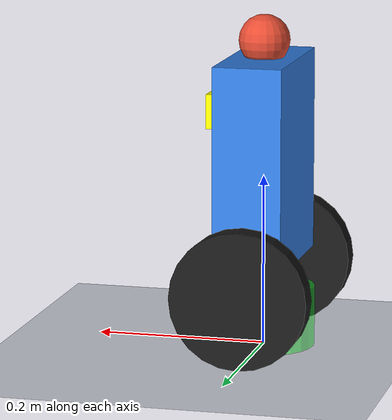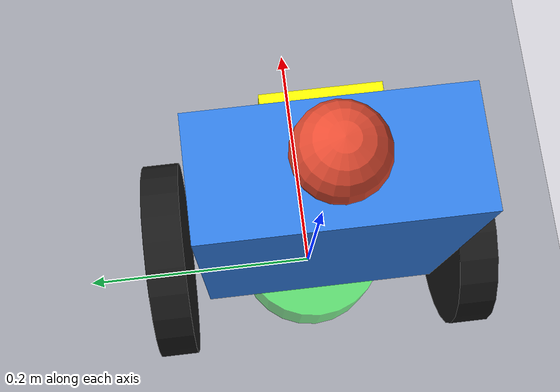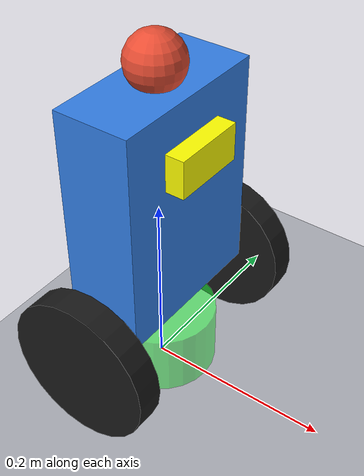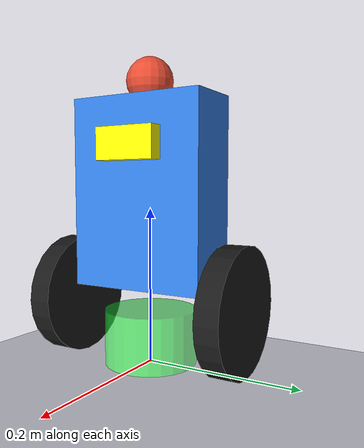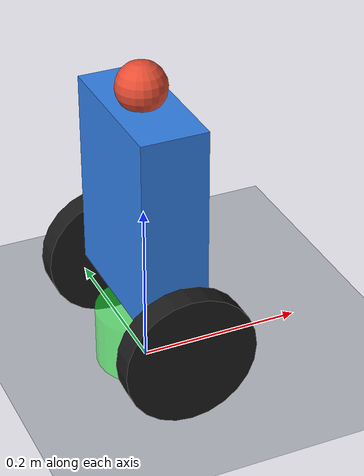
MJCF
<mujoco model="balance_bot">
  <option timestep="0.002" integrator="implicitfast"/>
  <visual><global offwidth="640" offheight="480"/></visual>
  <asset>
    <texture name="grid" type="2d" builtin="checker" rgb1=".25 .3 .35" rgb2=".18 .22 .27"
             width="300" height="300"/>
    <material name="grid" texture="grid" texrepeat="12 12" reflectance="0.1"/>
  </asset>
  <worldbody>
    <light pos="0 0 3" dir="0 0 -1"/>
    <geom name="floor" type="plane" size="5 5 0.1" material="grid"
          friction="1 0.005 0.0001"/>
    <site name="target" pos="0 0 0.01" size="0.06 0.06 0.004" type="cylinder"
          rgba="0.1 0.9 0.2 0.6"/>
    <body name="chassis" pos="0 0 0.08">
      <freejoint name="root"/>
      <geom name="body" type="box" size="0.04 0.09 0.12" pos="0 0 0.14" mass="1.5"
            rgba="0.2 0.5 0.9 1"/>
      <geom name="head" type="sphere" size="0.03" pos="0 0 0.28" mass="0.05"
            rgba="0.9 0.3 0.2 1"/>
      <geom name="nose" type="box" size="0.01 0.04 0.02" pos="0.05 0 0.2" mass="0.001"
            rgba="1 1 0 1"/>
      <body name="wheel_l" pos="0 0.12 0">
        <joint name="wl" type="hinge" axis="0 1 0" damping="0.002"/>
        <geom name="wl_geom" type="cylinder" size="0.08 0.015" euler="90 0 0" mass="0.15"
              friction="1 0.005 0.0001" rgba="0.1 0.1 0.1 1"/>
      </body>
      <body name="wheel_r" pos="0 -0.12 0">
        <joint name="wr" type="hinge" axis="0 1 0" damping="0.002"/>
        <geom name="wr_geom" type="cylinder" size="0.08 0.015" euler="90 0 0" mass="0.15"
              friction="1 0.005 0.0001" rgba="0.1 0.1 0.1 1"/>
      </body>
    </body>
  </worldbody>
  <actuator>
    <motor name="motor_l" joint="wl" gear="0.6" ctrlrange="-1 1"/>
    <motor name="motor_r" joint="wr" gear="0.6" ctrlrange="-1 1"/>
  </actuator>
</mujoco>
